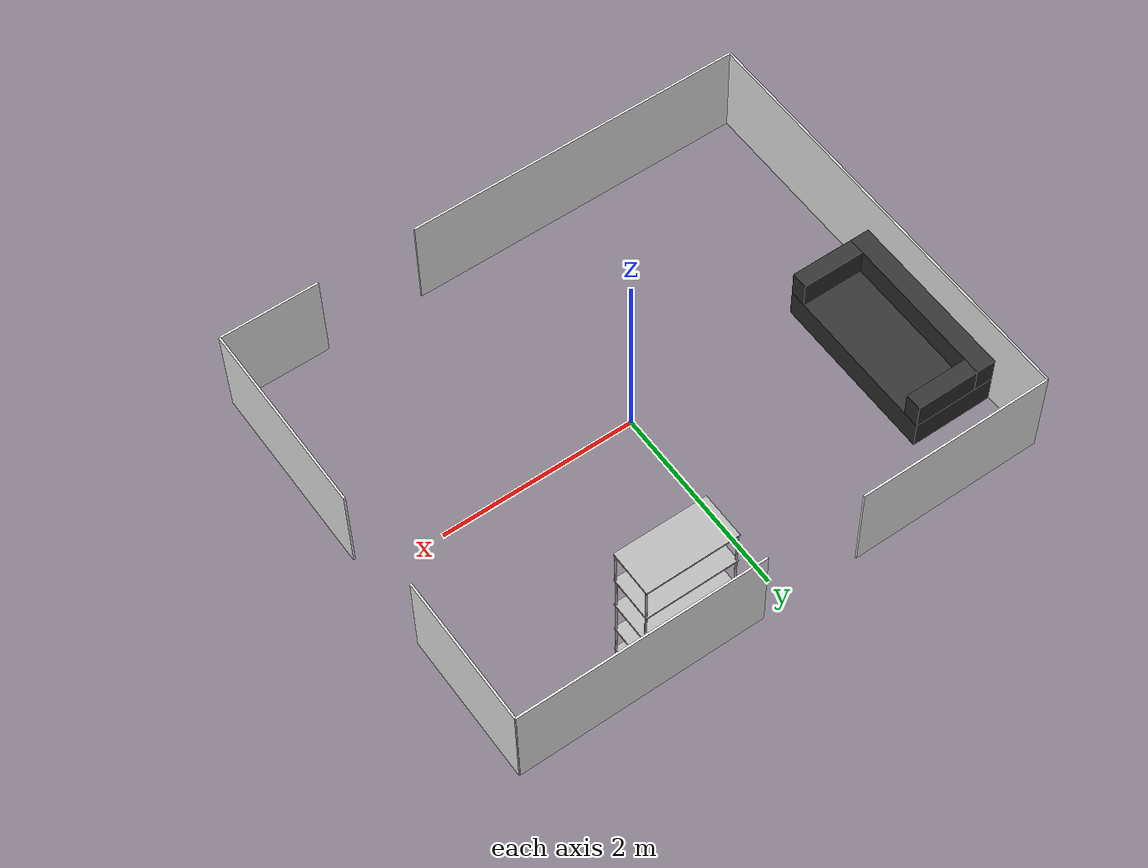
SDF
<sdf version="1.6">
    <model name="living_room">
        <static>true</static>
        <!-- East wall 1 -->
        <link name="east_wall_1">
            <pose>2.75 1.5 0.5 0 0 0</pose>
            <visual name="visual_east_wall_1">
                <geometry>
                    <box>
                        <size>0.02 1.5 1.0</size>
                    </box>
                </geometry>
                <material>
                    <ambient>1 1 1 1</ambient> <!-- White color, fully opaque -->
                </material>
            </visual>
            <collision name="collision_east_wall_1">
                <geometry>
                    <box>
                        <size>0.02 1.5 1.0</size>
                    </box>
                </geometry>
            </collision>
        </link>

        <!-- East wall 2 -->
        <link name="east_wall_2">
            <pose>2.75 -1.25 0.5 0 0 0</pose>
            <visual name="visual_east_wall_2">
                <geometry>
                    <box>
                        <size>0.02 2.0 1.0</size>
                    </box>
                </geometry>
                <material>
                    <ambient>1 1 1 1</ambient>
                </material>
            </visual>
            <collision name="collision_east_wall_2">
                <geometry>
                    <box>
                        <size>0.02 2.0 1.0</size>
                    </box>
                </geometry>
            </collision>
        </link>

        <!-- North wall 1 -->
        <link name="north_wall_1">
            <pose>-1.75 2.25 0.5 0 0 0</pose>
            <visual name="visual_north_wall_1">
                <geometry>
                    <box>
                        <size>2.0 0.02 1.0</size>
                    </box>
                </geometry>
                <material>
                    <ambient>1 1 1 1</ambient>
                </material>
            </visual>
            <collision name="collision_north_wall_1">
                <geometry>
                    <box>
                        <size>2.0 0.02 1.0</size>
                    </box>
                </geometry>
            </collision>
        </link>

        <!-- North wall 2 -->
        <link name="north_wall_2">
            <pose>1.5 2.25 0.5 0 0 0</pose>
            <visual name="visual_north_wall_2">
                <geometry>
                    <box>
                        <size>2.5 0.02 1.0</size>
                    </box>
                </geometry>
                <material>
                    <ambient>1 1 1 1</ambient>
                </material>
            </visual>
            <collision name="collision_north_wall_2">
                <geometry>
                    <box>
                        <size>2.5 0.02 1.0</size>
                    </box>
                </geometry>
            </collision>
        </link>

        <!-- South wall 1 -->
        <link name="south_wall_1">
            <pose>-1.0 -2.25 0.5 0 0 0</pose>
            <visual name="visual_south_wall_1">
                <geometry>
                    <box>
                        <size>3.5 0.02 1.0</size>
                    </box>
                </geometry>
                <material>
                    <ambient>1 1 1 1</ambient>
                </material>
            </visual>
            <collision name="collision_south_wall_1">
                <geometry>
                    <box>
                        <size>3.5 0.02 1.0</size>
                    </box>
                </geometry>
            </collision>
        </link>

        <!-- South wall 2 -->
        <link name="south_wall_2">
            <pose>2.25 -2.25 0.5 0 0 0</pose>
            <visual name="visual_south_wall_2">
                <geometry>
                    <box>
                        <size>1.0 0.02 1.0</size>
                    </box>
                </geometry>
                <material>
                    <ambient>1 1 1 1</ambient>
                </material>
            </visual>
            <collision name="collision_south_wall_2">
                <geometry>
                    <box>
                        <size>1.0 0.02 1.0</size>
                    </box>
                </geometry>
            </collision>
        </link>

        <!-- West wall -->
        <link name="west_wall">
            <pose>-2.75 0 0.5 0 0 0</pose>
            <visual name="visual_west_wall">
                <geometry>
                    <box>
                        <size>0.02 4.5 1.0</size>
                    </box>
                </geometry>
                <material>
                    <ambient>1 1 1 1</ambient>
                </material>
            </visual>
            <collision name="collision_west_wall">
                <geometry>
                    <box>
                        <size>0.02 4.5 1.0</size>
                    </box>
                </geometry>
            </collision>
        </link>

        <!-- Furniture -->
        <include>
            <uri>model://ar_ss26/furniture/metal_shelf</uri>
            <pose>1.0 2.0 0.0 0 0 0</pose>
            <static>true</static>
        </include>
        <include>
            <uri>model://ar_ss26/furniture/sofa</uri>
            <pose>-2.267194390296936 0.8 0.0 0 0 0</pose>
            <static>true</static>
        </include>
    </model>
</sdf>

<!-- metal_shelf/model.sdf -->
<sdf version="1.6">
    <model name="metal_shelf">
        <static>true</static>
        <!-- Legs of the shelf -->
        <link name="leg_1">
            <pose>0.45 -0.205 0.8 0 0 0</pose>
            <visual name="visual_leg_1">
                <geometry>
                    <cylinder>
                        <radius>0.01</radius>
                        <length>1.6</length>
                    </cylinder>
                </geometry>
                <material>
                    <ambient>0.7 0.7 0.7 1</ambient> <!-- Gray color -->
                </material>
            </visual>
            <collision name="collision_leg_1">
                <geometry>
                    <cylinder>
                        <radius>0.01</radius>
                        <length>1.6</length>
                    </cylinder>
                </geometry>
            </collision>
        </link>
        <link name="leg_2">
            <pose>0.45 0.205 0.8 0 0 0</pose>
            <visual name="visual_leg_2">
                <geometry>
                    <cylinder>
                        <radius>0.01</radius>
                        <length>1.6</length>
                    </cylinder>
                </geometry>
                <material>
                    <ambient>0.7 0.7 0.7 1</ambient>
                </material>
            </visual>
            <collision name="collision_leg_2">
                <geometry>
                    <cylinder>
                        <radius>0.01</radius>
                        <length>1.6</length>
                    </cylinder>
                </geometry>
            </collision>
        </link>
        <link name="leg_3">
            <pose>-0.45 -0.205 0.8 0 0 0</pose>
            <visual name="visual_leg_3">
                <geometry>
                    <cylinder>
                        <radius>0.01</radius>
                        <length>1.6</length>
                    </cylinder>
                </geometry>
                <material>
                    <ambient>0.7 0.7 0.7 1</ambient>
                </material>
            </visual>
            <collision name="collision_leg_3">
                <geometry>
                    <cylinder>
                        <radius>0.01</radius>
                        <length>1.6</length>
                    </cylinder>
                </geometry>
            </collision>
        </link>
        <link name="leg_4">
            <pose>-0.45 0.205 0.8 0 0 0</pose>
            <visual name="visual_leg_4">
                <geometry>
                    <cylinder>
                        <radius>0.01</radius>
                        <length>1.6</length>
                    </cylinder>
                </geometry>
                <material>
                    <ambient>0.7 0.7 0.7 1</ambient>
                </material>
            </visual>
            <collision name="collision_leg_4">
                <geometry>
                    <cylinder>
                        <radius>0.01</radius>
                        <length>1.6</length>
                    </cylinder>
                </geometry>
            </collision>
        </link>

        <!-- Shelves -->
        <link name="shelf_1">
            <pose>0 0 0.05 0 0 0</pose>
            <visual name="visual_shelf_1">
                <geometry>
                    <box>
                        <size>0.92 0.45 0.02</size>
                    </box>
                </geometry>
                <material>
                    <ambient>0.7 0.7 0.7 1</ambient>
                </material>
            </visual>
            <collision name="collision_shelf_1">
                <geometry>
                    <box>
                        <size>0.92 0.45 0.02</size>
                    </box>
                </geometry>
            </collision>
        </link>
        <link name="shelf_2">
            <pose>0 0 0.4 0 0 0</pose>
            <visual name="visual_shelf_2">
                <geometry>
                    <box>
                        <size>0.92 0.45 0.02</size>
                    </box>
                </geometry>
                <material>
                    <ambient>0.7 0.7 0.7 1</ambient>
                </material>
            </visual>
            <collision name="collision_shelf_2">
                <geometry>
                    <box>
                        <size>0.92 0.45 0.02</size>
                    </box>
                </geometry>
            </collision>
        </link>
        <link name="shelf_3">
            <pose>0 0 0.8 0 0 0</pose>
            <visual name="visual_shelf_3">
                <geometry>
                    <box>
                        <size>0.92 0.45 0.02</size>
                    </box>
                </geometry>
                <material>
                    <ambient>0.7 0.7 0.7 1</ambient>
                </material>
            </visual>
            <collision name="collision_shelf_3">
                <geometry>
                    <box>
                        <size>0.92 0.45 0.02</size>
                    </box>
                </geometry>
            </collision>
        </link>
        <link name="shelf_4">
            <pose>0 0 1.2 0 0 0</pose>
            <visual name="visual_shelf_4">
                <geometry>
                    <box>
                        <size>0.92 0.45 0.02</size>
                    </box>
                </geometry>
                <material>
                    <ambient>0.7 0.7 0.7 1</ambient>
                </material>
            </visual>
            <collision name="collision_shelf_4">
                <geometry>
                    <box>
                        <size>0.92 0.45 0.02</size>
                    </box>
                </geometry>
            </collision>
        </link>
        <link name="shelf_5">
            <pose>0 0 1.6 0 0 0</pose>
            <visual name="visual_shelf_5">
                <geometry>
                    <box>
                        <size>0.92 0.45 0.02</size>
                    </box>
                </geometry>
                <material>
                    <ambient>0.7 0.7 0.7 1</ambient>
                </material>
            </visual>
            <collision name="collision_shelf_5">
                <geometry>
                    <box>
                        <size>0.92 0.45 0.02</size>
                    </box>
                </geometry>
            </collision>
        </link>
    </model>
</sdf>

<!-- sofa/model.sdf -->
<sdf version="1.6">
    <model name="sofa">
        <static>true</static>
        <!-- Back of the sofa -->
        <link name="back">
            <pose>-0.325 0 0.5125 0 0 0</pose>
            <visual name="visual_back">
                <geometry>
                    <box>
                        <size>0.2 1.77 0.275</size>
                    </box>
                </geometry>
                <material>
                    <ambient>0.2 0.2 0.2 1</ambient> <!-- Dark grey color -->
                </material>
            </visual>
            <collision name="collision_back">
                <geometry>
                    <box>
                        <size>0.2 1.77 0.275</size>
                    </box>
                </geometry>
            </collision>
        </link>

        <!-- Left arm of the sofa -->
        <link name="left_arm">
            <pose>0.1 -0.8 0.5125 0 0 0</pose>
            <visual name="visual_left_arm">
                <geometry>
                    <box>
                        <size>0.65 0.17 0.275</size>
                    </box>
                </geometry>
                <material>
                    <ambient>0.2 0.2 0.2 1</ambient>
                </material>
            </visual>
            <collision name="collision_left_arm">
                <geometry>
                    <box>
                        <size>0.65 0.17 0.275</size>
                    </box>
                </geometry>
            </collision>
        </link>

        <!-- Right arm of the sofa -->
        <link name="right_arm">
            <pose>0.1 0.8 0.5125 0 0 0</pose>
            <visual name="visual_right_arm">
                <geometry>
                    <box>
                        <size>0.65 0.17 0.275</size>
                    </box>
                </geometry>
                <material>
                    <ambient>0.2 0.2 0.2 1</ambient>
                </material>
            </visual>
            <collision name="collision_right_arm">
                <geometry>
                    <box>
                        <size>0.65 0.17 0.275</size>
                    </box>
                </geometry>
            </collision>
        </link>

        <!-- Legs of the sofa -->
        <link name="leg_1">
            <pose>-0.345 -0.815 0.0375 0 0 0</pose>
            <visual name="visual_leg_1">
                <geometry>
                    <box>
                        <size>0.05 0.05 0.075</size>
                    </box>
                </geometry>
                <material>
                    <ambient>0 0 0 1</ambient> <!-- Black color -->
                </material>
            </visual>
            <collision name="collision_leg_1">
                <geometry>
                    <box>
                        <size>0.05 0.05 0.075</size>
                    </box>
                </geometry>
            </collision>
        </link>

        <link name="leg_2">
            <pose>-0.345 0.815 0.0375 0 0 0</pose>
            <visual name="visual_leg_2">
                <geometry>
                    <box>
                        <size>0.05 0.05 0.075</size>
                    </box>
                </geometry>
                <material>
                    <ambient>0 0 0 1</ambient>
                </material>
            </visual>
            <collision name="collision_leg_2">
                <geometry>
                    <box>
                        <size>0.05 0.05 0.075</size>
                    </box>
                </geometry>
            </collision>
        </link>

        <link name="leg_3">
            <pose>0.365 0.815 0.0375 0 0 0</pose>
            <visual name="visual_leg_3">
                <geometry>
                    <box>
                        <size>0.05 0.05 0.075</size>
                    </box>
                </geometry>
                <material>
                    <ambient>0 0 0 1</ambient>
                </material>
            </visual>
            <collision name="collision_leg_3">
                <geometry>
                    <box>
                        <size>0.05 0.05 0.075</size>
                    </box>
                </geometry>
            </collision>
        </link>

        <link name="leg_4">
            <pose>0.365 -0.815 0.0375 0 0 0</pose>
            <visual name="visual_leg_4">
                <geometry>
                    <box>
                        <size>0.05 0.05 0.075</size>
                    </box>
                </geometry>
                <material>
                    <ambient>0 0 0 1</ambient>
                </material>
            </visual>
            <collision name="collision_leg_4">
                <geometry>
                    <box>
                        <size>0.05 0.05 0.075</size>
                    </box>
                </geometry>
            </collision>
        </link>

        <!-- Seat of the sofa -->
        <link name="seat">
            <pose>0 0 0.225 0 0 0</pose>
            <visual name="visual_seat">
                <geometry>
                    <box>
                        <size>0.85 1.77 0.3</size>
                    </box>
                </geometry>
                <material>
                    <ambient>0.2 0.2 0.2 1</ambient> <!-- Dark grey color to match back and arms -->
                </material>
            </visual>
            <collision name="collision_seat">
                <geometry>
                    <box>
                        <size>0.85 1.77 0.3</size>
                    </box>
                </geometry>
            </collision>
        </link>
    </model>
</sdf>
